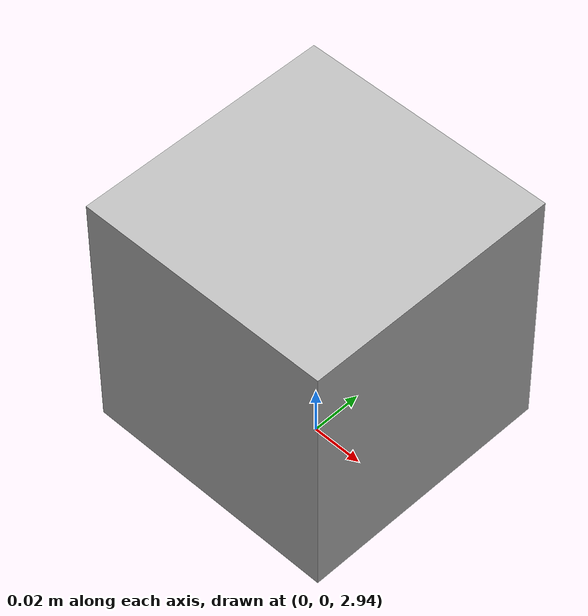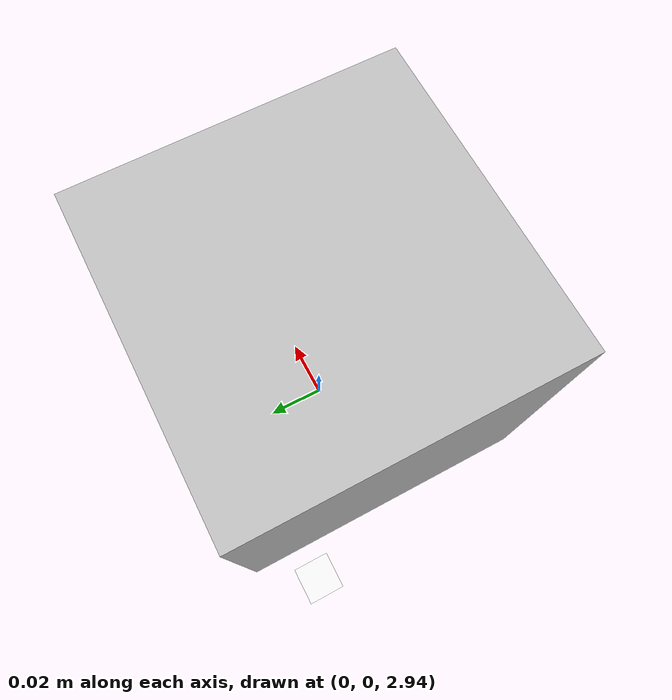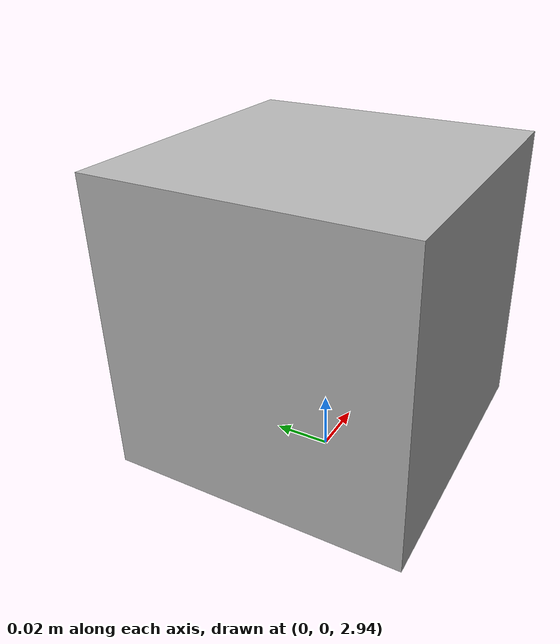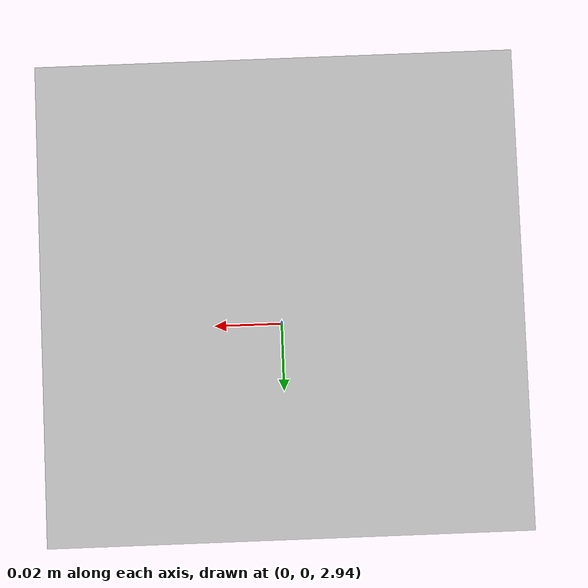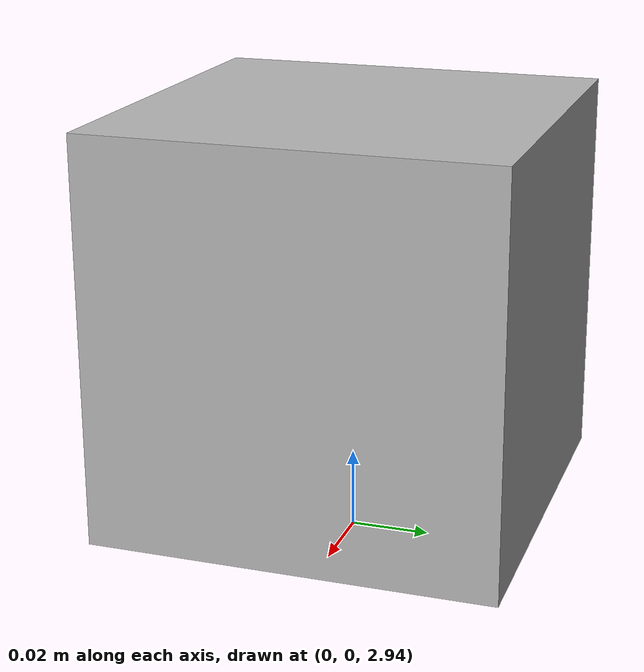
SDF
<?xml version="1.0" ?>
<sdf version="1.5">
    <world name="default">
        <include>
            <uri>model://sun</uri>
        </include>

        <model name="arena_ground">
            <include>
                <uri>model://arena_ground</uri>
            </include>
        </model>

        <model name="overhead_camera">
            <include>
                <uri>model://overhead_camera</uri>
            </include>
            <pose>0 0 3 -1.57 1.57 0</pose>
        </model>

    </world>
</sdf>

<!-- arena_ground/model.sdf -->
<sdf version='1.6'>
  <model name='arena_ground'>
    <static>true</static>
    <link name='link_0'>
      <pose frame=''>-0 -0 -0 0 -0 0</pose>
      <inertial>
        <mass>1</mass>
        <inertia>
          <ixx>0.166667</ixx>
          <ixy>0</ixy>
          <ixz>0</ixz>
          <iyy>0.166667</iyy>
          <iyz>0</iyz>
          <izz>0.166667</izz>
        </inertia>
        <pose frame=''>0 0 0 0 -0 0</pose>
      </inertial>
      <gravity>1</gravity>
      <self_collide>0</self_collide>
      <kinematic>0</kinematic>
      <visual name='visual'>
        <pose frame=''>0 0 0 0 -0 0</pose>
        <geometry>
          <box>
            <size>2.5 2.5 0.1</size>
          </box>
        </geometry>

        <material>
          <script>
            <uri>file://media/materials/scripts/gazebo.material</uri>
            <name>Gazebo/White</name>
          </script>
        </material>

        <cast_shadows>1</cast_shadows>
        <transparency>0</transparency>
      </visual>
      <collision name='collision'>
        <laser_retro>0</laser_retro>
        <max_contacts>10</max_contacts>
        <pose frame=''>0 0 0 0 -0 0</pose>
        <geometry>
          <box>
            <size>2.5 2.5 0.1</size>
          </box>
        </geometry>
        <surface>
          <friction>
            <ode>
              <mu>1</mu>
              <mu2>1</mu2>
              <fdir1>0 0 0</fdir1>
              <slip1>0</slip1>
              <slip2>0</slip2>
            </ode>
            <torsional>
              <coefficient>1</coefficient>
              <patch_radius>0</patch_radius>
              <surface_radius>0</surface_radius>
              <use_patch_radius>1</use_patch_radius>
              <ode>
                <slip>0</slip>
              </ode>
            </torsional>
          </friction>
          <bounce>
            <restitution_coefficient>0</restitution_coefficient>
            <threshold>1e+06</threshold>
          </bounce>
          <contact>
            <collide_without_contact>0</collide_without_contact>
            <collide_without_contact_bitmask>1</collide_without_contact_bitmask>
            <collide_bitmask>1</collide_bitmask>
            <ode>
              <soft_cfm>0</soft_cfm>
              <soft_erp>0.2</soft_erp>
              <kp>1e+13</kp>
              <kd>1</kd>
              <max_vel>0.01</max_vel>
              <min_depth>0</min_depth>
            </ode>
            <bullet>
              <split_impulse>1</split_impulse>
              <split_impulse_penetration_threshold>-0.01</split_impulse_penetration_threshold>
              <soft_cfm>0</soft_cfm>
              <soft_erp>0.2</soft_erp>
              <kp>1e+13</kp>
              <kd>1</kd>
            </bullet>
          </contact>
        </surface>
      </collision>
    </link>
    <static>0</static>
    <allow_auto_disable>1</allow_auto_disable>
  </model>
</sdf>

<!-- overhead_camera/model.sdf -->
<sdf version="1.5">
    <model name="overhead_camera">
        <static>true</static>
        <link name="camera_link">
            <visual name="visual">
                <cast_shadows>false</cast_shadows>
                <geometry>
                    <box>
                        <size>0.1 0.1 0.1</size>
                    </box>
                </geometry>
            </visual>
            <sensor type="camera" name="overhead_camera">
              <update_rate>30.0</update_rate>
              <camera name="overhead_camera">
                <horizontal_fov>0.925025</horizontal_fov>
                <image>
                  <width>1280</width>
                  <height>768</height>
                  <format>R8G8B8</format>
                </image>
                <clip>
                  <near>0.02</near>
                  <far>300</far>
                </clip>
                <noise>
                  <type>gaussian</type>
                  <mean>0.0</mean>
                  <stddev>0.007</stddev>
                </noise>
              </camera>
              <plugin name="camera_controller" filename="libgazebo_ros_camera.so">
                <alwaysOn>true</alwaysOn>
                <updateRate>0</updateRate>
                <cameraName>overhead_camera</cameraName>
                <imageTopicName>image_raw</imageTopicName>
                <cameraInfoTopicName>camera_info</cameraInfoTopicName>
                <frameName>base_link</frameName>
                <hackBaseline>0.07</hackBaseline>
                <distortionK1>0.0</distortionK1>
                <distortionK2>0.0</distortionK2>
                <distortionK3>0.0</distortionK3>
                <distortionT1>0.0</distortionT1>
                <distortionT2>0.0</distortionT2>
              </plugin>
            </sensor>
        </link>
    </model>
</sdf>
